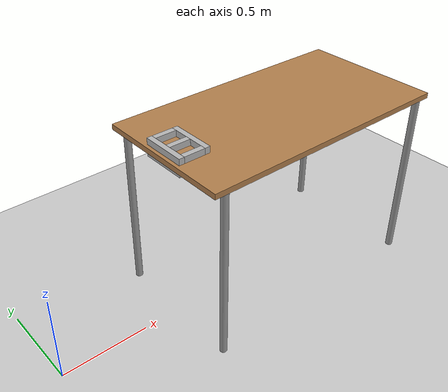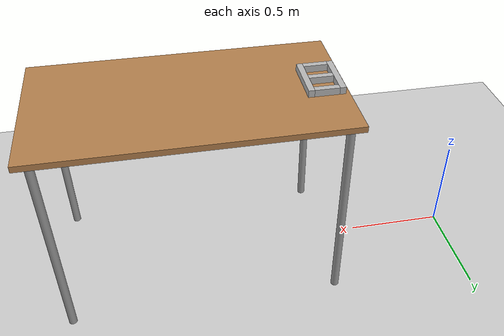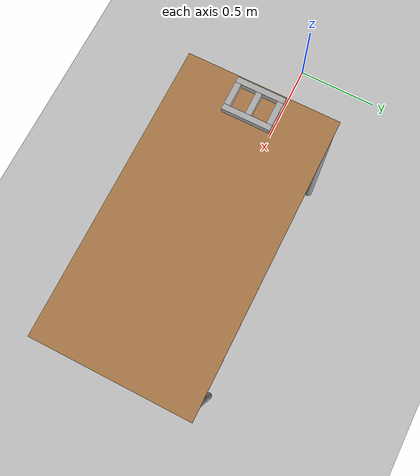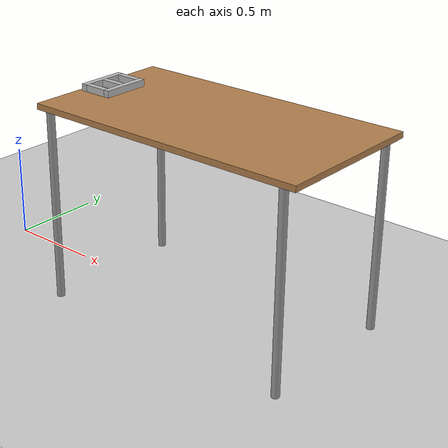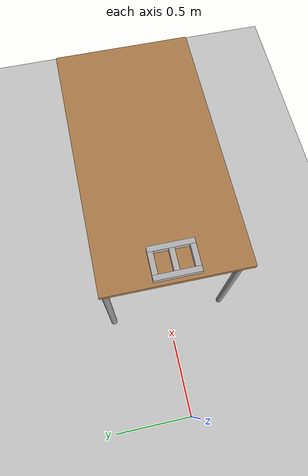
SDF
<?xml version="1.0" ?>
<sdf version="1.4">
	<world name="cinder_block_setup">
		<!-- A global light source -->
		<include>
			<uri>model://sun</uri>
		</include>
		<!-- A ground plane -->
		<include>
			<uri>model://ground_plane</uri>
		</include>
		<!-- A table to hold things -->
		<include>
			<uri>model://low_table</uri>
			<name>low_table</name>
			<pose>1.4 0 0 0 0 0</pose>
		</include>
		<!-- A table to hold things -->
		<include>
			<uri>model://cinder_block</uri>
			<name>cinder_block</name>
			<pose>0.76 0 0.8 0 0 -1.57</pose>
		</include>
		<!-- Shadows disabled -->
		<scene>
			<shadows>0</shadows>
		</scene>
		<!-- Camera position -->
		<gui>
			<camera name="camera1">
				<pose>2.6319 -1.80076 1.48357 0 0.292 2.4</pose>
			</camera>
		</gui>
	</world>
</sdf>

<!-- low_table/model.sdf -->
<sdf version="1.5">
  <model name="low_table">
    <static>true</static>
    <link name="link">
      <collision name="surface">
        <pose>0 0 1.0 0 0 0</pose>
        <geometry>
          <box>
            <size>1.5 0.8 0.03</size>
          </box>
        </geometry>
        <surface>
          <friction>
            <ode>
              <mu>0.6</mu>
              <mu2>0.6</mu2>
            </ode>
          </friction>
        </surface>
      </collision>
      <visual name="visual1">
        <pose>0 0 1.0 0 0 0</pose>
        <geometry>
          <box>
            <size>1.5 0.8 0.03</size>
          </box>
        </geometry>
        <material>
          <script>
            <uri>file://media/materials/scripts/gazebo.material</uri>
            <name>Gazebo/Wood</name>
          </script>
        </material>
      </visual>
      <collision name="front_left_leg">
        <pose>0.68 0.38 0.5 0 0 0</pose>
        <geometry>
          <cylinder>
            <radius>0.02</radius>
            <length>1.0</length>
          </cylinder>
        </geometry>
      </collision>
      <visual name="front_left_leg">
        <pose>0.68 0.38 0.5 0 0 0</pose>
        <geometry>
          <cylinder>
            <radius>0.02</radius>
            <length>1.0</length>
          </cylinder>
        </geometry>
        <material>
          <script>
            <uri>file://media/materials/scripts/gazebo.material</uri>
            <name>Gazebo/Grey</name>
          </script>
        </material>
      </visual>
      <collision name="front_right_leg">
        <pose>0.68 -0.38 0.5 0 0 0</pose>
        <geometry>
          <cylinder>
            <radius>0.02</radius>
            <length>1.0</length>
          </cylinder>
        </geometry>
      </collision>
      <visual name="front_right_leg">
        <pose>0.68 -0.38 0.5 0 0 0</pose>
        <geometry>
          <cylinder>
            <radius>0.02</radius>
            <length>1.0</length>
          </cylinder>
        </geometry>
        <material>
          <script>
            <uri>file://media/materials/scripts/gazebo.material</uri>
            <name>Gazebo/Grey</name>
          </script>
        </material>
      </visual>
      <collision name="back_right_leg">
        <pose>-0.68 -0.38 0.5 0 0 0</pose>
        <geometry>
          <cylinder>
            <radius>0.02</radius>
            <length>1.0</length>
          </cylinder>
        </geometry>
      </collision>
      <visual name="back_right_leg">
        <pose>-0.68 -0.38 0.5 0 0 0</pose>
        <geometry>
          <cylinder>
            <radius>0.02</radius>
            <length>1.0</length>
          </cylinder>
        </geometry>
        <material>
          <script>
            <uri>file://media/materials/scripts/gazebo.material</uri>
            <name>Gazebo/Grey</name>
          </script>
        </material>
      </visual>
      <collision name="back_left_leg">
        <pose>-0.68 0.38 0.5 0 0 0</pose>
        <geometry>
          <cylinder>
            <radius>0.02</radius>
            <length>1.0</length>
          </cylinder>
        </geometry>
      </collision>
      <visual name="back_left_leg">
        <pose>-0.68 0.38 0.5 0 0 0</pose>
        <geometry>
          <cylinder>
            <radius>0.02</radius>
            <length>1.0</length>
          </cylinder>
        </geometry>
        <material>
          <script>
            <uri>file://media/materials/scripts/gazebo.material</uri>
            <name>Gazebo/Grey</name>
          </script>
        </material>
      </visual>
    </link>
  </model>
</sdf>

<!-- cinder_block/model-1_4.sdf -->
<sdf version="1.4">
	<model name="cinder_block">
		<link name="link">
			<pose>0 0 0.1 0 0 0</pose>
			<inertial>
				<mass>0.390</mass>
				<inertia>
					<ixx>0.00058</ixx>
					<ixy>0</ixy>
					<ixz>0</ixz>
					<iyy>0.00058</iyy>
					<iyz>0</iyz>
					<izz>0.00019</izz>
				</inertia>
			</inertial>
			<visual name="visual_left">
				<pose>0 0.075 0.1 0 0 0</pose>
				<geometry>
					<box>
						<size>0.25 0.03 0.1</size>
					</box>
				</geometry>
				<material>
					<script>
						<uri>model://cinder_block/materials/scripts</uri>
						<uri>model://cinder_block/materials/textures</uri>
						<name>CinderBlock/Diffuse</name>
					</script>
				</material>
			</visual>
			<visual name="visual_right">
				<pose>0 -0.075 0.1 0 0 0</pose>
				<geometry>
					<box>
						<size>0.25 0.03 0.1</size>
					</box>
				</geometry>
				<material>
					<script>
						<uri>model://cinder_block/materials/scripts</uri>
						<uri>model://cinder_block/materials/textures</uri>
						<name>CinderBlock/Diffuse</name>
					</script>
				</material>
			</visual>
			<visual name="visual_front">
				<pose>-0.11 0 0.1 0 0 1.57</pose>
				<geometry>
					<box>
						<size>0.12 0.03 0.1</size>
					</box>
				</geometry>
				<material>
					<script>
						<uri>model://cinder_block/materials/scripts</uri>
						<uri>model://cinder_block/materials/textures</uri>
						<name>CinderBlock/Diffuse</name>
					</script>
				</material>
			</visual>
			<visual name="visual_mid">
				<pose>0 0 0.1 0 0 1.57</pose>
				<geometry>
					<box>
						<size>0.12 0.03 0.1</size>
					</box>
				</geometry>
				<material>
					<script>
						<uri>model://cinder_block/materials/scripts</uri>
						<uri>model://cinder_block/materials/textures</uri>
						<name>CinderBlock/Diffuse</name>
					</script>
				</material>
			</visual>
			<visual name="visual_back">
				<pose>0.11 0 0.1 0 0 1.57</pose>
				<geometry>
					<box>
						<size>0.12 0.03 0.1</size>
					</box>
				</geometry>
				<material>
					<script>
						<uri>model://cinder_block/materials/scripts</uri>
						<uri>model://cinder_block/materials/textures</uri>
						<name>CinderBlock/Diffuse</name>
					</script>
				</material>
			</visual>
			<collision name="left">
				<pose>0 0.075 0.1 0 0 0</pose>
				<geometry>
					<box>
						<size>0.25 0.03 0.1</size>
					</box>
				</geometry>
			</collision>
			<collision name="right">
				<pose>0 -0.075 0.1 0 0 0</pose>
				<geometry>
					<box>
						<size>0.25 0.03 0.1</size>
					</box>
				</geometry>
			</collision>
			<collision name="front">
				<pose>-0.11 0 0.1 0 0 1.57</pose>
				<geometry>
					<box>
						<size>0.12 0.03 0.1</size>
					</box>
				</geometry>
			</collision>
			<collision name="middle">
				<pose>0 0 0.1 0 0 1.57</pose>
				<geometry>
					<box>
						<size>0.12 0.03 0.1</size>
					</box>
				</geometry>
			</collision>
			<collision name="back">
				<pose>0.11 0 0.1 0 0 1.57</pose>
				<geometry>
					<box>
						<size>0.12 0.03 0.1</size>
					</box>
				</geometry>
			</collision>
		</link>
	</model>
</sdf>
